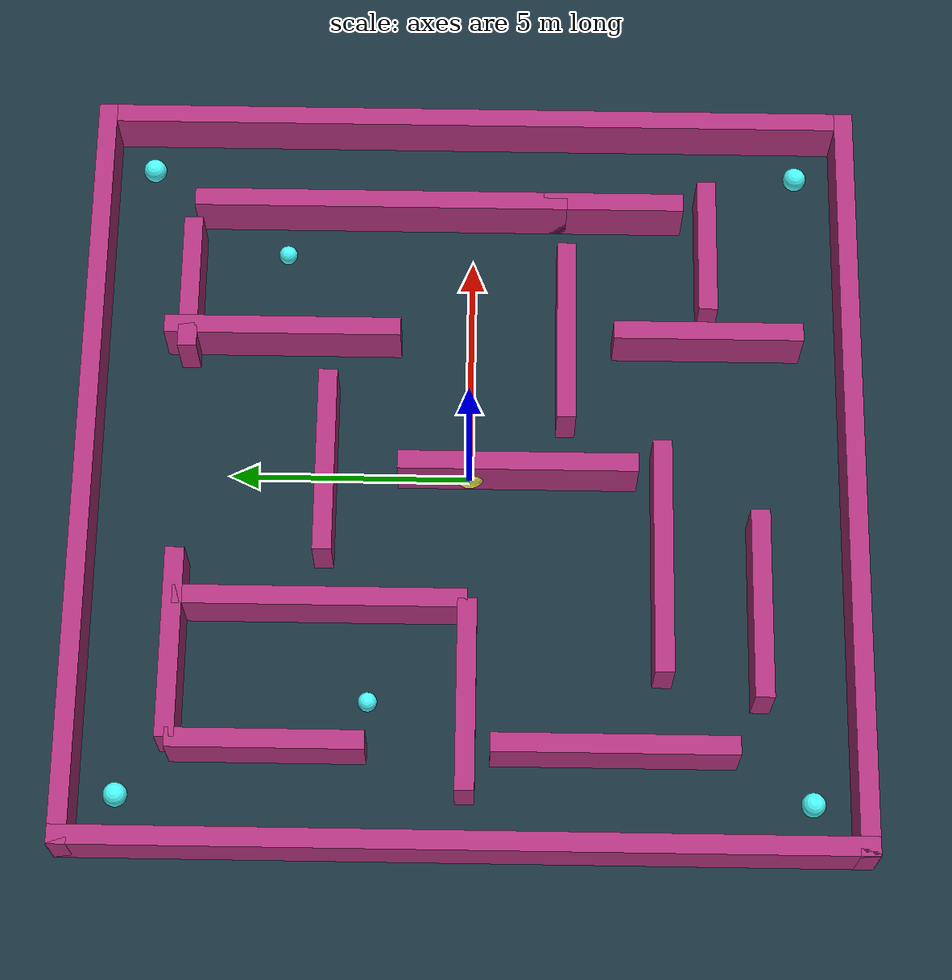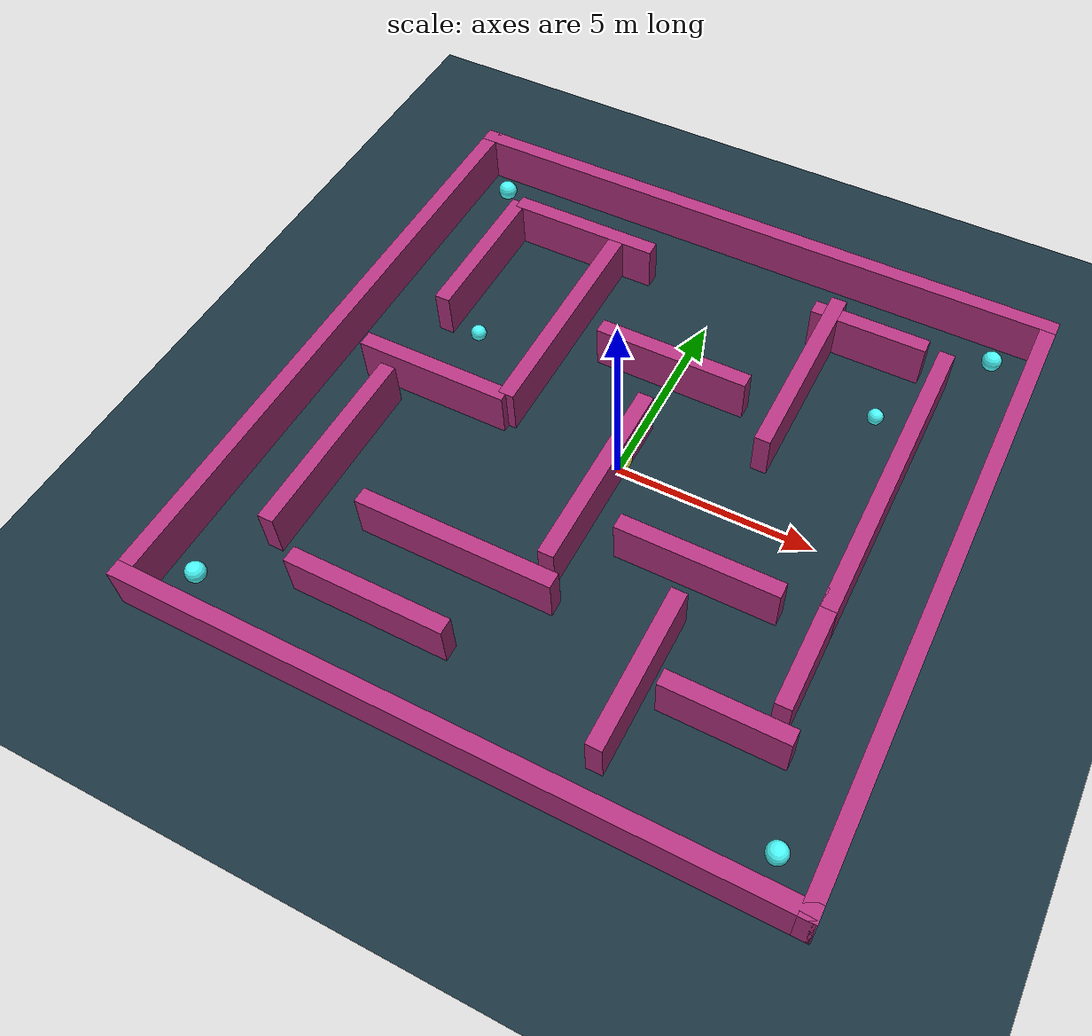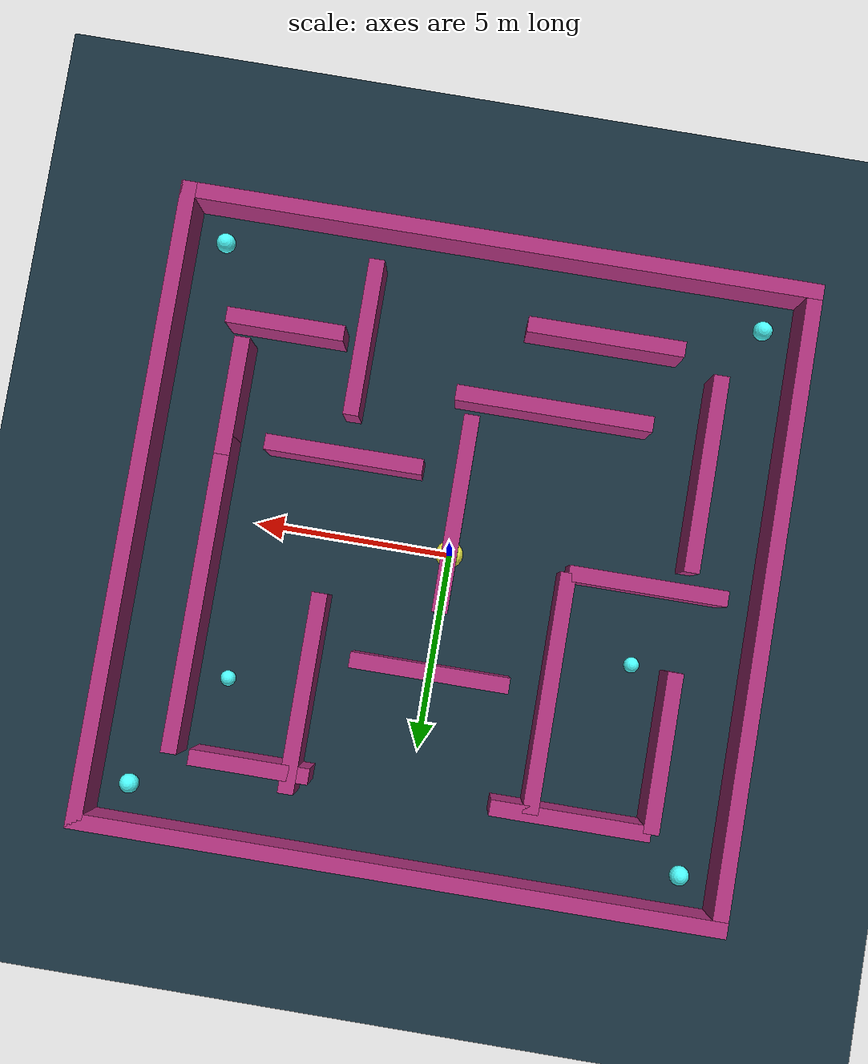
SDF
<?xml version="1.0" ?>
<sdf version="1.8">
  <world name="maze_world">
    <physics name="1ms" type="ignored">
      <max_step_size>0.001</max_step_size>
      <real_time_factor>1.0</real_time_factor>
    </physics>
    <plugin
      filename="gz-sim-physics-system"
      name="gz::sim::systems::Physics">
    </plugin>
    <plugin
      filename="gz-sim-user-commands-system"
      name="gz::sim::systems::UserCommands">
    </plugin>
    <plugin
      filename="gz-sim-scene-broadcaster-system"
      name="gz::sim::systems::SceneBroadcaster">
    </plugin>
    <plugin
      filename="gz-sim-sensors-system"
      name="gz::sim::systems::Sensors">
      <render_engine>ogre2</render_engine>
    </plugin>

    <!-- Ambient Lighting: Cool Blue/Purple atmosphere -->
    <light type="directional" name="main_light">
      <cast_shadows>true</cast_shadows>
      <pose>0 0 15 0 0 0</pose>
      <diffuse>0.7 0.75 0.9 1</diffuse>
      <specular>0.3 0.3 0.4 1</specular>
      <attenuation>
        <range>1000</range>
        <constant>0.9</constant>
        <linear>0.01</linear>
        <quadratic>0.001</quadratic>
      </attenuation>
      <direction>-0.3 0.2 -0.9</direction>
    </light>

    <light type="point" name="ambient_glow">
      <pose>0 0 8 0 0 0</pose>
      <diffuse>0.4 0.5 0.7 1</diffuse>
      <attenuation>
        <range>30</range>
      </attenuation>
    </light>

    <!-- Ground: Dark Teal/Cyan Grid -->
    <model name="ground_plane">
      <static>true</static>
      <link name="link">
        <collision name="collision">
          <geometry>
            <plane>
              <normal>0 0 1</normal>
              <size>50 50</size>
            </plane>
          </geometry>
        </collision>
        <visual name="visual">
          <geometry>
            <plane>
              <normal>0 0 1</normal>
              <size>50 50</size>
            </plane>
          </geometry>
          <material>
            <ambient>0.08 0.15 0.2 1</ambient>
            <diffuse>0.1 0.2 0.25 1</diffuse>
            <specular>0.15 0.25 0.3 1</specular>
          </material>
        </visual>
      </link>
    </model>

    <!-- OUTER BOUNDARY WALLS (Deep Magenta/Purple) -->

    <!-- Outer Wall - North -->
    <model name="outer_wall_north">
      <static>true</static>
      <pose>0 8 0.6 0 0 0</pose>
      <link name="link">
        <visual name="visual">
          <geometry><box><size>16.4 0.4 1.2</size></box></geometry>
          <material>
            <ambient>0.6 0.15 0.4 1</ambient>
            <diffuse>0.7 0.2 0.5 1</diffuse>
            <specular>0.4 0.1 0.3 1</specular>
          </material>
        </visual>
        <collision name="collision">
          <geometry><box><size>16.4 0.4 1.2</size></box></geometry>
        </collision>
      </link>
    </model>

    <!-- Outer Wall - South -->
    <model name="outer_wall_south">
      <static>true</static>
      <pose>0 -8 0.6 0 0 0</pose>
      <link name="link">
        <visual name="visual">
          <geometry><box><size>16.4 0.4 1.2</size></box></geometry>
          <material>
            <ambient>0.6 0.15 0.4 1</ambient>
            <diffuse>0.7 0.2 0.5 1</diffuse>
            <specular>0.4 0.1 0.3 1</specular>
          </material>
        </visual>
        <collision name="collision">
          <geometry><box><size>16.4 0.4 1.2</size></box></geometry>
        </collision>
      </link>
    </model>

    <!-- Outer Wall - East -->
    <model name="outer_wall_east">
      <static>true</static>
      <pose>8 0 0.6 0 0 0</pose>
      <link name="link">
        <visual name="visual">
          <geometry><box><size>0.4 16.4 1.2</size></box></geometry>
          <material>
            <ambient>0.6 0.15 0.4 1</ambient>
            <diffuse>0.7 0.2 0.5 1</diffuse>
            <specular>0.4 0.1 0.3 1</specular>
          </material>
        </visual>
        <collision name="collision">
          <geometry><box><size>0.4 16.4 1.2</size></box></geometry>
        </collision>
      </link>
    </model>

    <!-- Outer Wall - West -->
    <model name="outer_wall_west">
      <static>true</static>
      <pose>-8 0 0.6 0 0 0</pose>
      <link name="link">
        <visual name="visual">
          <geometry><box><size>0.4 16.4 1.2</size></box></geometry>
          <material>
            <ambient>0.6 0.15 0.4 1</ambient>
            <diffuse>0.7 0.2 0.5 1</diffuse>
            <specular>0.4 0.1 0.3 1</specular>
          </material>
        </visual>
        <collision name="collision">
          <geometry><box><size>0.4 16.4 1.2</size></box></geometry>
        </collision>
      </link>
    </model>

    <!-- INNER MAZE WALLS -->

    <!-- Horizontal Wall 1 -->
    <model name="maze_h1">
      <static>true</static>
      <pose>-4 6 0.6 0 0 0</pose>
      <link name="link">
        <visual name="visual">
          <geometry><box><size>4 0.4 1.2</size></box></geometry>
          <material>
            <ambient>0.6 0.15 0.4 1</ambient>
            <diffuse>0.7 0.2 0.5 1</diffuse>
          </material>
        </visual>
        <collision name="collision">
          <geometry><box><size>4 0.4 1.2</size></box></geometry>
        </collision>
      </link>
    </model>

    <!-- Horizontal Wall 2 -->
    <model name="maze_h2">
      <static>true</static>
      <pose>4 6 0.6 0 0 0</pose>
      <link name="link">
        <visual name="visual">
          <geometry><box><size>3 0.4 1.2</size></box></geometry>
          <material>
            <ambient>0.6 0.15 0.4 1</ambient>
            <diffuse>0.7 0.2 0.5 1</diffuse>
          </material>
        </visual>
        <collision name="collision">
          <geometry><box><size>3 0.4 1.2</size></box></geometry>
        </collision>
      </link>
    </model>

    <!-- Vertical Wall 1 -->
    <model name="maze_v1">
      <static>true</static>
      <pose>-6 4 0.6 0 0 0</pose>
      <link name="link">
        <visual name="visual">
          <geometry><box><size>0.4 4 1.2</size></box></geometry>
          <material>
            <ambient>0.6 0.15 0.4 1</ambient>
            <diffuse>0.7 0.2 0.5 1</diffuse>
          </material>
        </visual>
        <collision name="collision">
          <geometry><box><size>0.4 4 1.2</size></box></geometry>
        </collision>
      </link>
    </model>

    <!-- Vertical Wall 2 -->
    <model name="maze_v2">
      <static>true</static>
      <pose>-3 3 0.6 0 0 0</pose>
      <link name="link">
        <visual name="visual">
          <geometry><box><size>0.4 6 1.2</size></box></geometry>
          <material>
            <ambient>0.6 0.15 0.4 1</ambient>
            <diffuse>0.7 0.2 0.5 1</diffuse>
          </material>
        </visual>
        <collision name="collision">
          <geometry><box><size>0.4 6 1.2</size></box></geometry>
        </collision>
      </link>
    </model>

    <!-- Horizontal Wall 3 (center area) -->
    <model name="maze_h3">
      <static>true</static>
      <pose>0 3 0.6 0 0 0</pose>
      <link name="link">
        <visual name="visual">
          <geometry><box><size>4 0.4 1.2</size></box></geometry>
          <material>
            <ambient>0.6 0.15 0.4 1</ambient>
            <diffuse>0.7 0.2 0.5 1</diffuse>
          </material>
        </visual>
        <collision name="collision">
          <geometry><box><size>4 0.4 1.2</size></box></geometry>
        </collision>
      </link>
    </model>

    <!-- Vertical Wall 3 (center right) -->
    <model name="maze_v3">
      <static>true</static>
      <pose>3 4 0.6 0 0 0</pose>
      <link name="link">
        <visual name="visual">
          <geometry><box><size>0.4 5 1.2</size></box></geometry>
          <material>
            <ambient>0.6 0.15 0.4 1</ambient>
            <diffuse>0.7 0.2 0.5 1</diffuse>
          </material>
        </visual>
        <collision name="collision">
          <geometry><box><size>0.4 5 1.2</size></box></geometry>
        </collision>
      </link>
    </model>

    <!-- Vertical Wall 4 (far right) -->
    <model name="maze_v4">
      <static>true</static>
      <pose>6 2 0.6 0 0 0</pose>
      <link name="link">
        <visual name="visual">
          <geometry><box><size>0.4 8 1.2</size></box></geometry>
          <material>
            <ambient>0.6 0.15 0.4 1</ambient>
            <diffuse>0.7 0.2 0.5 1</diffuse>
          </material>
        </visual>
        <collision name="collision">
          <geometry><box><size>0.4 8 1.2</size></box></geometry>
        </collision>
      </link>
    </model>

    <!-- Horizontal Wall 4 -->
    <model name="maze_h4">
      <static>true</static>
      <pose>-5 0 0.6 0 0 0</pose>
      <link name="link">
        <visual name="visual">
          <geometry><box><size>4 0.4 1.2</size></box></geometry>
          <material>
            <ambient>0.6 0.15 0.4 1</ambient>
            <diffuse>0.7 0.2 0.5 1</diffuse>
          </material>
        </visual>
        <collision name="collision">
          <geometry><box><size>4 0.4 1.2</size></box></geometry>
        </collision>
      </link>
    </model>

    <!-- Vertical Wall 5 (center bottom) -->
    <model name="maze_v5">
      <static>true</static>
      <pose>0 -1 0.6 0 0 0</pose>
      <link name="link">
        <visual name="visual">
          <geometry><box><size>0.4 5 1.2</size></box></geometry>
          <material>
            <ambient>0.6 0.15 0.4 1</ambient>
            <diffuse>0.7 0.2 0.5 1</diffuse>
          </material>
        </visual>
        <collision name="collision">
          <geometry><box><size>0.4 5 1.2</size></box></geometry>
        </collision>
      </link>
    </model>

    <!-- Horizontal Wall 5 -->
    <model name="maze_h5">
      <static>true</static>
      <pose>3 -2 0.6 0 0 0</pose>
      <link name="link">
        <visual name="visual">
          <geometry><box><size>4 0.4 1.2</size></box></geometry>
          <material>
            <ambient>0.6 0.15 0.4 1</ambient>
            <diffuse>0.7 0.2 0.5 1</diffuse>
          </material>
        </visual>
        <collision name="collision">
          <geometry><box><size>4 0.4 1.2</size></box></geometry>
        </collision>
      </link>
    </model>

    <!-- Vertical Wall 6 -->
    <model name="maze_v6">
      <static>true</static>
      <pose>-6 -3 0.6 0 0 0</pose>
      <link name="link">
        <visual name="visual">
          <geometry><box><size>0.4 5 1.2</size></box></geometry>
          <material>
            <ambient>0.6 0.15 0.4 1</ambient>
            <diffuse>0.7 0.2 0.5 1</diffuse>
          </material>
        </visual>
        <collision name="collision">
          <geometry><box><size>0.4 5 1.2</size></box></geometry>
        </collision>
      </link>
    </model>

    <!-- Horizontal Wall 6 (bottom corridor) -->
    <model name="maze_h6">
      <static>true</static>
      <pose>-2 -4 0.6 0 0 0</pose>
      <link name="link">
        <visual name="visual">
          <geometry><box><size>5 0.4 1.2</size></box></geometry>
          <material>
            <ambient>0.6 0.15 0.4 1</ambient>
            <diffuse>0.7 0.2 0.5 1</diffuse>
          </material>
        </visual>
        <collision name="collision">
          <geometry><box><size>5 0.4 1.2</size></box></geometry>
        </collision>
      </link>
    </model>

    <!-- Vertical Wall 7 -->
    <model name="maze_v7">
      <static>true</static>
      <pose>3 -5 0.6 0 0 0</pose>
      <link name="link">
        <visual name="visual">
          <geometry><box><size>0.4 4 1.2</size></box></geometry>
          <material>
            <ambient>0.6 0.15 0.4 1</ambient>
            <diffuse>0.7 0.2 0.5 1</diffuse>
          </material>
        </visual>
        <collision name="collision">
          <geometry><box><size>0.4 4 1.2</size></box></geometry>
        </collision>
      </link>
    </model>

    <!-- Horizontal Wall 7 -->
    <model name="maze_h7">
      <static>true</static>
      <pose>5 -5 0.6 0 0 0</pose>
      <link name="link">
        <visual name="visual">
          <geometry><box><size>3 0.4 1.2</size></box></geometry>
          <material>
            <ambient>0.6 0.15 0.4 1</ambient>
            <diffuse>0.7 0.2 0.5 1</diffuse>
          </material>
        </visual>
        <collision name="collision">
          <geometry><box><size>3 0.4 1.2</size></box></geometry>
        </collision>
      </link>
    </model>

    <!-- Additional complexity walls -->
    <model name="maze_h8">
      <static>true</static>
      <pose>-3 -6 0.6 0 0 0</pose>
      <link name="link">
        <visual name="visual">
          <geometry><box><size>4 0.4 1.2</size></box></geometry>
          <material>
            <ambient>0.6 0.15 0.4 1</ambient>
            <diffuse>0.7 0.2 0.5 1</diffuse>
          </material>
        </visual>
        <collision name="collision">
          <geometry><box><size>4 0.4 1.2</size></box></geometry>
        </collision>
      </link>
    </model>

    <model name="maze_v8">
      <static>true</static>
      <pose>6 -3 0.6 0 0 0</pose>
      <link name="link">
        <visual name="visual">
          <geometry><box><size>0.4 3 1.2</size></box></geometry>
          <material>
            <ambient>0.6 0.15 0.4 1</ambient>
            <diffuse>0.7 0.2 0.5 1</diffuse>
          </material>
        </visual>
        <collision name="collision">
          <geometry><box><size>0.4 3 1.2</size></box></geometry>
        </collision>
      </link>
    </model>

    <!-- MARKER SPHERES (Like the white dots in the reference) -->
    <!-- Using Cyan/Teal glow spheres instead of white -->

    <!-- Corner Marker 1 -->
    <model name="marker_sphere_1">
      <static>true</static>
      <pose>-7 7 0.4 0 0 0</pose>
      <link name="link">
        <visual name="visual">
          <geometry><sphere><radius>0.25</radius></sphere></geometry>
          <material>
            <ambient>0.2 0.9 0.9 1</ambient>
            <diffuse>0.3 1.0 1.0 1</diffuse>
            <emissive>0.1 0.5 0.5 1</emissive>
          </material>
        </visual>
        <collision name="collision">
          <geometry><sphere><radius>0.25</radius></sphere></geometry>
        </collision>
      </link>
    </model>

    <!-- Corner Marker 2 -->
    <model name="marker_sphere_2">
      <static>true</static>
      <pose>7 7 0.4 0 0 0</pose>
      <link name="link">
        <visual name="visual">
          <geometry><sphere><radius>0.25</radius></sphere></geometry>
          <material>
            <ambient>0.2 0.9 0.9 1</ambient>
            <diffuse>0.3 1.0 1.0 1</diffuse>
            <emissive>0.1 0.5 0.5 1</emissive>
          </material>
        </visual>
        <collision name="collision">
          <geometry><sphere><radius>0.25</radius></sphere></geometry>
        </collision>
      </link>
    </model>

    <!-- Corner Marker 3 -->
    <model name="marker_sphere_3">
      <static>true</static>
      <pose>-7 -7 0.4 0 0 0</pose>
      <link name="link">
        <visual name="visual">
          <geometry><sphere><radius>0.25</radius></sphere></geometry>
          <material>
            <ambient>0.2 0.9 0.9 1</ambient>
            <diffuse>0.3 1.0 1.0 1</diffuse>
            <emissive>0.1 0.5 0.5 1</emissive>
          </material>
        </visual>
        <collision name="collision">
          <geometry><sphere><radius>0.25</radius></sphere></geometry>
        </collision>
      </link>
    </model>

    <!-- Corner Marker 4 -->
    <model name="marker_sphere_4">
      <static>true</static>
      <pose>7 -7 0.4 0 0 0</pose>
      <link name="link">
        <visual name="visual">
          <geometry><sphere><radius>0.25</radius></sphere></geometry>
          <material>
            <ambient>0.2 0.9 0.9 1</ambient>
            <diffuse>0.3 1.0 1.0 1</diffuse>
            <emissive>0.1 0.5 0.5 1</emissive>
          </material>
        </visual>
        <collision name="collision">
          <geometry><sphere><radius>0.25</radius></sphere></geometry>
        </collision>
      </link>
    </model>

    <!-- Center Goal Marker (larger, glowing) -->
    <model name="goal_marker">
      <static>true</static>
      <pose>0 0 0.5 0 0 0</pose>
      <link name="link">
        <visual name="visual">
          <geometry><sphere><radius>0.35</radius></sphere></geometry>
          <material>
            <ambient>0.9 0.9 0.2 1</ambient>
            <diffuse>1.0 1.0 0.3 1</diffuse>
            <emissive>0.5 0.5 0.1 1</emissive>
          </material>
        </visual>
        <collision name="collision">
          <geometry><sphere><radius>0.35</radius></sphere></geometry>
        </collision>
      </link>
    </model>

    <!-- Additional Junction Markers -->
    <model name="marker_sphere_5">
      <static>true</static>
      <pose>-5 2 0.4 0 0 0</pose>
      <link name="link">
        <visual name="visual">
          <geometry><sphere><radius>0.2</radius></sphere></geometry>
          <material>
            <ambient>0.2 0.9 0.9 1</ambient>
            <diffuse>0.3 1.0 1.0 1</diffuse>
            <emissive>0.1 0.5 0.5 1</emissive>
          </material>
        </visual>
        <collision name="collision">
          <geometry><sphere><radius>0.2</radius></sphere></geometry>
        </collision>
      </link>
    </model>

    <model name="marker_sphere_6">
      <static>true</static>
      <pose>5 4 0.4 0 0 0</pose>
      <link name="link">
        <visual name="visual">
          <geometry><sphere><radius>0.2</radius></sphere></geometry>
          <material>
            <ambient>0.2 0.9 0.9 1</ambient>
            <diffuse>0.3 1.0 1.0 1</diffuse>
            <emissive>0.1 0.5 0.5 1</emissive>
          </material>
        </visual>
        <collision name="collision">
          <geometry><sphere><radius>0.2</radius></sphere></geometry>
        </collision>
      </link>
    </model>

  </world>
</sdf>
